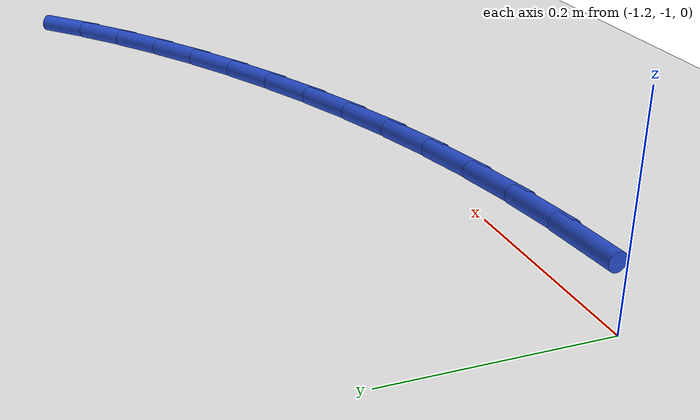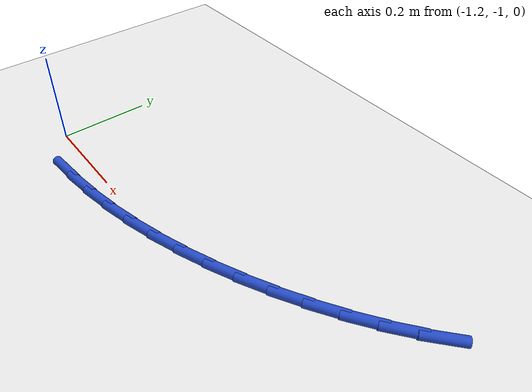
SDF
<sdf version="1.6">
 <world name="default">
  <model name="ground_plane">
   <static>1</static>
   <link name="link">
    <collision name="collision">
     <geometry><plane><normal>0 0 1</normal><size>100 100</size></plane></geometry>
     <surface><friction><ode><mu>100</mu><mu2>50</mu2></ode></friction></surface>
    </collision>
    <visual name="visual">
     <cast_shadows>0</cast_shadows>
     <geometry><plane><normal>0 0 1</normal><size>100 100</size></plane></geometry>
     <material>
      <script><uri>file://media/materials/scripts/gazebo.material</uri><name>Gazebo/WhiteGlow</name></script>
     </material>
    </visual>
   </link>
  </model>
  <model name="line">
   <link name="link_83">
    <pose>-1.0801056920159735 -1.051416742948312 0.01 0 1.57 0.0915510467758768</pose>
    <collision name="collision">
     <geometry><cylinder><radius>0.01</radius><length>0.08</length></cylinder></geometry>
    </collision>
    <visual name="visual">
     <material>
      <script><name>Gazebo/Blue</name><uri>file://media/materials/scripts/gazebo.material</uri></script>
     </material>
     <geometry><cylinder><radius>0.01</radius><length>0.08</length></cylinder></geometry>
    </visual>
   </link>
   <link name="link_84">
    <pose>-1.0192288067492912 -1.0458277768303164 0.01 0 1.57 0.1455382368115212</pose>
    <collision name="collision">
     <geometry><cylinder><radius>0.01</radius><length>0.08</length></cylinder></geometry>
    </collision>
    <visual name="visual">
     <material>
      <script><name>Gazebo/Blue</name><uri>file://media/materials/scripts/gazebo.material</uri></script>
     </material>
     <geometry><cylinder><radius>0.01</radius><length>0.08</length></cylinder></geometry>
    </visual>
   </link>
   <link name="link_85">
    <pose>-0.9585043411181414 -1.0369271134791338 0.01 0 1.57 0.1975568775832747</pose>
    <collision name="collision">
     <geometry><cylinder><radius>0.01</radius><length>0.08</length></cylinder></geometry>
    </collision>
    <visual name="visual">
     <material>
      <script><name>Gazebo/Blue</name><uri>file://media/materials/scripts/gazebo.material</uri></script>
     </material>
     <geometry><cylinder><radius>0.01</radius><length>0.08</length></cylinder></geometry>
    </visual>
   </link>
   <link name="link_86">
    <pose>-0.8980976312864778 -1.0248356367252767 0.01 0 1.57 0.24781165842800104</pose>
    <collision name="collision">
     <geometry><cylinder><radius>0.01</radius><length>0.08</length></cylinder></geometry>
    </collision>
    <visual name="visual">
     <material>
      <script><name>Gazebo/Blue</name><uri>file://media/materials/scripts/gazebo.material</uri></script>
     </material>
     <geometry><cylinder><radius>0.01</radius><length>0.08</length></cylinder></geometry>
    </visual>
   </link>
   <link name="link_87">
    <pose>-0.8381740134182525 -1.0096742303992579 0.01 0 1.57 0.29652403021826473</pose>
    <collision name="collision">
     <geometry><cylinder><radius>0.01</radius><length>0.08</length></cylinder></geometry>
    </collision>
    <visual name="visual">
     <material>
      <script><name>Gazebo/Blue</name><uri>file://media/materials/scripts/gazebo.material</uri></script>
     </material>
     <geometry><cylinder><radius>0.01</radius><length>0.08</length></cylinder></geometry>
    </visual>
   </link>
   <link name="link_88">
    <pose>-0.7788988236774198 -0.9915637783315908 0.01 0 1.57 0.3439267899003549</pose>
    <collision name="collision">
     <geometry><cylinder><radius>0.01</radius><length>0.08</length></cylinder></geometry>
    </collision>
    <visual name="visual">
     <material>
      <script><name>Gazebo/Blue</name><uri>file://media/materials/scripts/gazebo.material</uri></script>
     </material>
     <geometry><cylinder><radius>0.01</radius><length>0.08</length></cylinder></geometry>
    </visual>
   </link>
   <link name="link_89">
    <pose>-0.7204373982279313 -0.9706251643527881 0.01 0 1.57 0.3902604061429372</pose>
    <collision name="collision">
     <geometry><cylinder><radius>0.01</radius><length>0.08</length></cylinder></geometry>
    </collision>
    <visual name="visual">
     <material>
      <script><name>Gazebo/Blue</name><uri>file://media/materials/scripts/gazebo.material</uri></script>
     </material>
     <geometry><cylinder><radius>0.01</radius><length>0.08</length></cylinder></geometry>
    </visual>
   </link>
   <link name="link_90">
    <pose>-0.6629550732337418 -0.9469792722933632 0.01 0 1.57 0.4357708084750606</pose>
    <collision name="collision">
     <geometry><cylinder><radius>0.01</radius><length>0.08</length></cylinder></geometry>
    </collision>
    <visual name="visual">
     <material>
      <script><name>Gazebo/Blue</name><uri>file://media/materials/scripts/gazebo.material</uri></script>
     </material>
     <geometry><cylinder><radius>0.01</radius><length>0.08</length></cylinder></geometry>
    </visual>
   </link>
   <link name="link_91">
    <pose>-0.6066171848588024 -0.9207469859838276 0.01 0 1.57 0.480781934992934</pose>
    <collision name="collision">
     <geometry><cylinder><radius>0.01</radius><length>0.08</length></cylinder></geometry>
    </collision>
    <visual name="visual">
     <material>
      <script><name>Gazebo/Blue</name><uri>file://media/materials/scripts/gazebo.material</uri></script>
     </material>
     <geometry><cylinder><radius>0.01</radius><length>0.08</length></cylinder></geometry>
    </visual>
   </link>
   <link name="link_92">
    <pose>-0.5515906215379631 -0.89204484901783 0.01 0 1.57 0.526631680500644</pose>
    <collision name="collision">
     <geometry><cylinder><radius>0.01</radius><length>0.08</length></cylinder></geometry>
    </collision>
    <visual name="visual">
     <material>
      <script><name>Gazebo/Blue</name><uri>file://media/materials/scripts/gazebo.material</uri></script>
     </material>
     <geometry><cylinder><radius>0.01</radius><length>0.08</length></cylinder></geometry>
    </visual>
   </link>
   <link name="link_93">
    <pose>-0.4980652574592967 -0.860925135528149 0.01 0 1.57 0.5743821415998874</pose>
    <collision name="collision">
     <geometry><cylinder><radius>0.01</radius><length>0.08</length></cylinder></geometry>
    </collision>
    <visual name="visual">
     <material>
      <script><name>Gazebo/Blue</name><uri>file://media/materials/scripts/gazebo.material</uri></script>
     </material>
     <geometry><cylinder><radius>0.01</radius><length>0.08</length></cylinder></geometry>
    </visual>
   </link>
   <link name="link_94">
    <pose>-0.446248538926131 -0.82739098702344 0.01 0 1.57 0.6242679067390366</pose>
    <collision name="collision">
     <geometry><cylinder><radius>0.01</radius><length>0.08</length></cylinder></geometry>
    </collision>
    <visual name="visual">
     <material>
      <script><name>Gazebo/Blue</name><uri>file://media/materials/scripts/gazebo.material</uri></script>
     </material>
     <geometry><cylinder><radius>0.01</radius><length>0.08</length></cylinder></geometry>
    </visual>
   </link>
   <link name="link_95">
    <pose>-0.39634835724598755 -0.7914443007555537 0.01 0 1.57 0.6764834990807576</pose>
    <collision name="collision">
     <geometry><cylinder><radius>0.01</radius><length>0.08</length></cylinder></geometry>
    </collision>
    <visual name="visual">
     <material>
      <script><name>Gazebo/Blue</name><uri>file://media/materials/scripts/gazebo.material</uri></script>
     </material>
     <geometry><cylinder><radius>0.01</radius><length>0.08</length></cylinder></geometry>
    </visual>
   </link>
   <link name="link_96">
    <pose>-0.34857260372639076 -0.7530869739763424 0.01 0 1.57 0.7311955255131473</pose>
    <collision name="collision">
     <geometry><cylinder><radius>0.01</radius><length>0.08</length></cylinder></geometry>
    </collision>
    <visual name="visual">
     <material>
      <script><name>Gazebo/Blue</name><uri>file://media/materials/scripts/gazebo.material</uri></script>
     </material>
     <geometry><cylinder><radius>0.01</radius><length>0.08</length></cylinder></geometry>
    </visual>
   </link>
  </model>
 </world>
</sdf>
